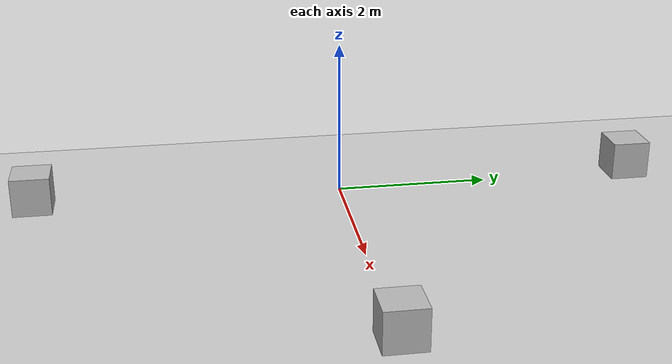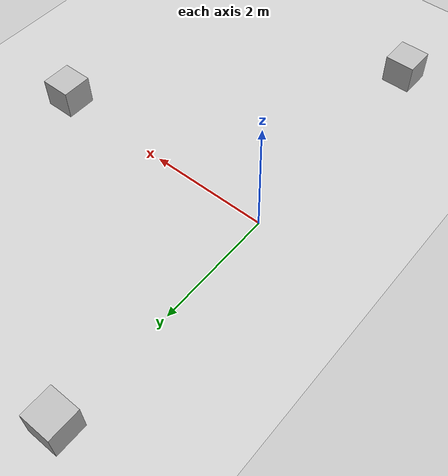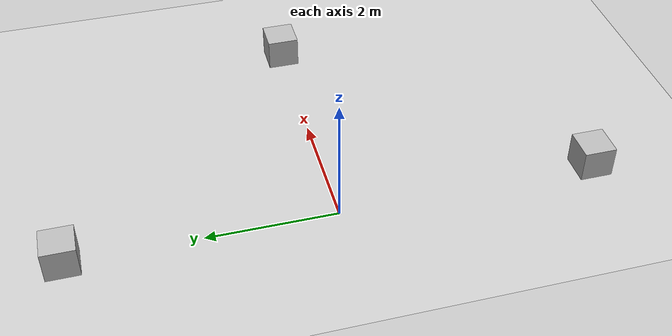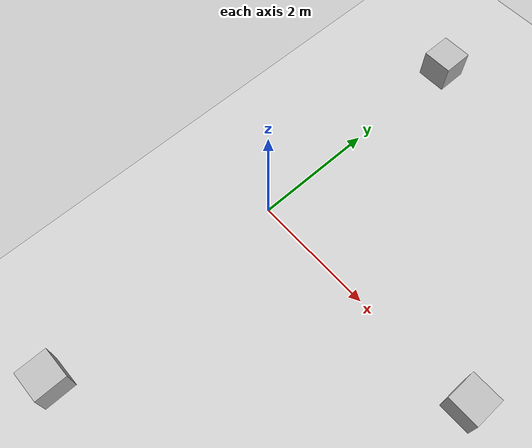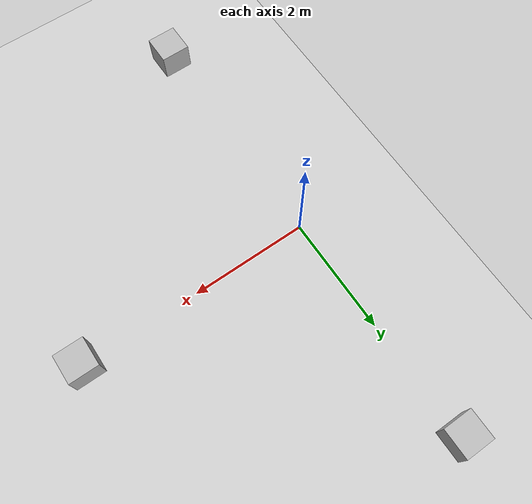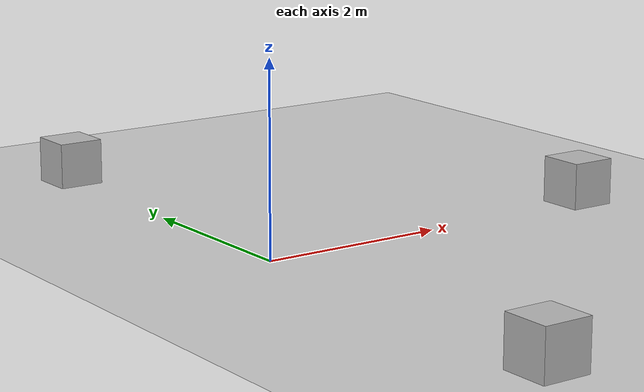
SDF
<?xml version="1.0" ?>
<sdf version="1.6">
  <world name="aruco_triangle">
    <physics name="1ms" type="ignored">
      <max_step_size>0.001</max_step_size>
      <real_time_factor>1.0</real_time_factor>
    </physics>

    <plugin filename="ignition-gazebo-contact-system" name="gz::sim::systems::Contact" />
    <plugin filename="ignition-gazebo-imu-system" name="gz::sim::systems::Imu" />
    <plugin filename="ignition-gazebo-physics-system" name="gz::sim::systems::Physics" />
    <plugin filename="ignition-gazebo-scene-broadcaster-system"
      name="gz::sim::systems::SceneBroadcaster" />
    <plugin filename="ignition-gazebo-sensors-system" name="gz::sim::systems::Sensors" />
    <plugin filename="ignition-gazebo-user-commands-system" name="gz::sim::systems::UserCommands" />

    <spherical_coordinates>
      <surface_model>EARTH_WGS84</surface_model>
      <world_frame_orientation>ENU</world_frame_orientation>
      <latitude_deg>50.088384</latitude_deg>
      <longitude_deg>19.939128</longitude_deg>
      <elevation>0</elevation>
      <heading_deg>0</heading_deg>
    </spherical_coordinates>

    <light type="directional" name="sun">
      <cast_shadows>true</cast_shadows>
      <pose>0 0 10 0 0 0</pose>
      <diffuse>0.8 0.8 0.8 1</diffuse>
      <specular>0.2 0.2 0.2 1</specular>
      <attenuation>
        <range>1000</range>
        <constant>0.9</constant>
        <linear>0.01</linear>
        <quadratic>0.001</quadratic>
      </attenuation>
      <direction>-0.5 0.1 -0.9</direction>
    </light>

    <model name="ground_plane">
      <static>true</static>
      <link name="link">
        <collision name="collision">
          <geometry>
            <plane>
              <normal>0 0 1</normal>
              <size>100 100</size>
            </plane>
          </geometry>
        </collision>
        <visual name="visual">
          <geometry>
            <plane>
              <normal>0 0 1</normal>
              <size>100 100</size>
            </plane>
          </geometry>
          <material>
            <ambient>0.8 0.8 0.8 1</ambient>
            <diffuse>0.8 0.8 0.8 1</diffuse>
            <specular>0.8 0.8 0.8 1</specular>
          </material>
        </visual>
      </link>
    </model>

    <!-- Box 1: ArUco marker 0 on every face -->
    <!-- Viewing waypoint: (2.0, 0.0) facing east (yaw=0) -->
    <!-- Static, no collision — robot can pass through -->
    <model name="box_1">
      <static>true</static>
      <pose>4.0 0.0 0.25 0 0 0</pose>
      <link name="link">
        <visual name="aruco_box_mesh">
          <geometry>
            <mesh>
              <uri>model://aruco_box_0/model.dae</uri>
              <scale>0.25 0.25 0.25</scale>
            </mesh>
          </geometry>
        </visual>
      </link>
    </model>

    <!-- Box 2: ArUco marker 1 on every face -->
    <!-- Viewing waypoint: (0.0, 2.0) facing north (yaw=π/2) -->
    <!-- Static, no collision — robot can pass through -->
    <model name="box_2">
      <static>true</static>
      <pose>0.0 4.0 0.25 0 0 1.5708</pose>
      <link name="link">
        <visual name="aruco_box_mesh">
          <geometry>
            <mesh>
              <uri>model://aruco_box_1/model.dae</uri>
              <scale>0.25 0.25 0.25</scale>
            </mesh>
          </geometry>
        </visual>
      </link>
    </model>

    <!-- Box 3: ArUco marker 2 on every face -->
    <!-- Viewing waypoint: (0.0, -2.0) facing south (yaw=-π/2) -->
    <!-- Static, no collision — robot can pass through -->
    <model name="box_3">
      <static>true</static>
      <pose>0.0 -4.0 0.25 0 0 -1.5708</pose>
      <link name="link">
        <visual name="aruco_box_mesh">
          <geometry>
            <mesh>
              <uri>model://aruco_box_2/model.dae</uri>
              <scale>0.25 0.25 0.25</scale>
            </mesh>
          </geometry>
        </visual>
      </link>
    </model>

  </world>
</sdf>
